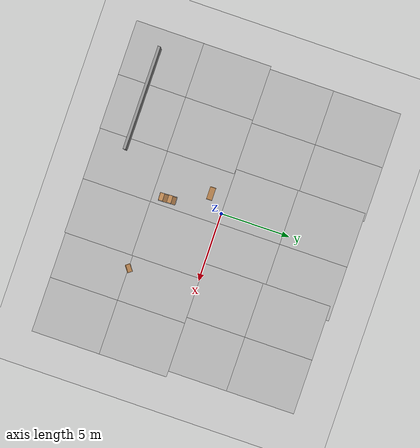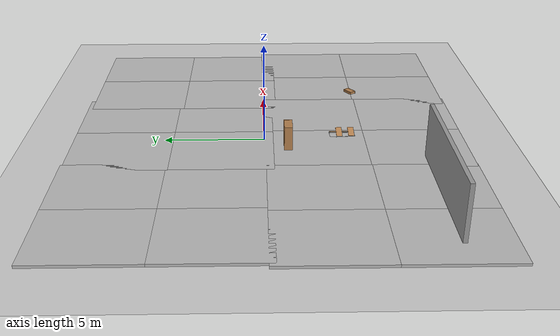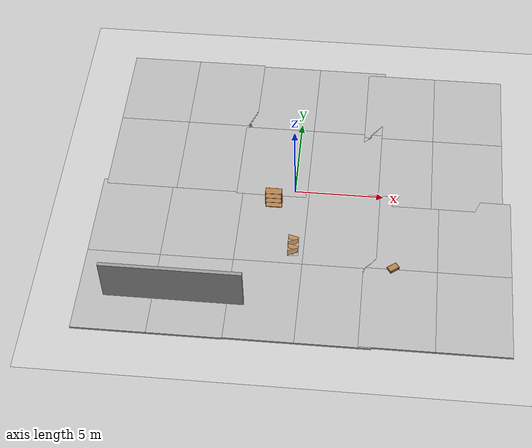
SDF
<sdf version="1.7">
 <world name="default">
  <light name="sun" type="directional">
   <pose>0 0 10 0 -0 0</pose>
   <diffuse>0.8 0.8 0.8 1</diffuse>
   <specular>0.2 0.2 0.2 1</specular>
   <attenuation>
    <range>1000</range>
    <constant>0.9</constant>
    <linear>0.01</linear>
    <quadratic>0.001</quadratic>
   </attenuation>
   <direction>-0.5 0.1 -0.9</direction>
   <spot><inner_angle>0</inner_angle><outer_angle>0</outer_angle><falloff>0</falloff></spot>
  </light>
  <model name="ground_plane">
   <static>1</static>
   <link name="link">
    <collision name="collision">
     <geometry><plane><normal>0 0 1</normal><size>100 100</size></plane></geometry>
     <surface><friction><ode><mu>100</mu><mu2>50</mu2></ode></friction></surface>
    </collision>
    <visual name="visual">
     <cast_shadows>0</cast_shadows>
     <geometry><plane><normal>0 0 1</normal><size>100 100</size></plane></geometry>
     <material>
      <script><uri>file://media/materials/scripts/gazebo.material</uri><name>Gazebo/Grey</name></script>
     </material>
    </visual>
   </link>
  </model>
  <gravity>0 0 -9.8</gravity>
  <magnetic_field>6e-06 2.3e-05 -4.2e-05</magnetic_field>
  <atmosphere type="adiabatic"/>
  <physics type="ode">
   <max_step_size>0.001</max_step_size>
   <real_time_factor>1</real_time_factor>
   <real_time_update_rate>1000</real_time_update_rate>
  </physics>
  <scene><ambient>0.4 0.4 0.4 1</ambient><background>0.7 0.7 0.7 1</background><shadows>1</shadows></scene>
  <spherical_coordinates>
   <surface_model>EARTH_WGS84</surface_model>
   <latitude_deg>0</latitude_deg>
   <longitude_deg>0</longitude_deg>
   <elevation>0</elevation>
   <heading_deg>0</heading_deg>
  </spherical_coordinates>
  <model name="grey_wall">
   <static>1</static>
   <link name="link">
    <pose>0 0 1.4 0 -0 0</pose>
    <collision name="collision"><geometry><box><size>7.5 0.2 2.8</size></box></geometry></collision>
    <visual name="visual">
     <cast_shadows>0</cast_shadows>
     <geometry><box><size>7.5 0.2 2.8</size></box></geometry>
     <material>
      <script>
       <uri>model://grey_wall/materials/scripts</uri>
       <uri>model://grey_wall/materials/textures</uri>
       <name>vrc/grey_wall</name>
      </script>
     </material>
    </visual>
   </link>
   <pose>-5.79546 -7.82873 0 0 -0 0</pose>
  </model>
  <model name="frc2016_chevaldefrise">
   <link name="base">
    <inertial>
     <mass>10</mass>
     <pose>0 0 0.15672 0 -0 0</pose>
     <inertia><ixx>0.380221</ixx><ixy>0</ixy><ixz>0</ixz><iyy>1.43365</iyy><iyz>0</iyz><izz>1.64745</izz></inertia>
    </inertial>
    <visual name="platform">
     <pose>0 0 0.06968 0 -0 0</pose>
     <geometry><box><size>1.27 0.5969 0.003175</size></box></geometry>
    </visual>
    <collision name="platform">
     <pose>0 0 0.06968 0 -0 0</pose>
     <geometry><box><size>1.27 0.5969 0.003175</size></box></geometry>
    </collision>
    <visual name="bar">
     <pose>0 0 0.16855 0 1.5707 0</pose>
     <geometry><cylinder><radius>0.02108</radius><length>1.273</length></cylinder></geometry>
    </visual>
    <collision name="bar">
     <pose>0 0 0.16855 0 1.5707 0</pose>
     <geometry><cylinder><radius>0.02108</radius><length>1.27</length></cylinder></geometry>
    </collision>
    <visual name="castor1">
     <pose>-0.45653 -0.16581 0.03175 0 -0 0</pose>
     <geometry><sphere><radius>0.03175</radius></sphere></geometry>
    </visual>
    <collision name="castor1">
     <pose>-0.45653 -0.16581 0.03175 0 -0 0</pose>
     <geometry><sphere><radius>0.03175</radius></sphere></geometry>
    </collision>
    <visual name="castor2">
     <pose>-0.27855 0.21408 0.03175 0 -0 0</pose>
     <geometry><sphere><radius>0.03175</radius></sphere></geometry>
    </visual>
    <collision name="castor2">
     <pose>-0.27855 0.21408 0.03175 0 -0 0</pose>
     <geometry><sphere><radius>0.03175</radius></sphere></geometry>
    </collision>
    <visual name="castor3">
     <pose>0.28191 0.21419 0.03175 0 -0 0</pose>
     <geometry><sphere><radius>0.03175</radius></sphere></geometry>
    </visual>
    <collision name="castor3">
     <pose>0.28191 0.21419 0.03175 0 -0 0</pose>
     <geometry><sphere><radius>0.03175</radius></sphere></geometry>
    </collision>
    <visual name="castor4">
     <pose>0.45965 -0.16602 0.03175 0 -0 0</pose>
     <geometry><sphere><radius>0.03175</radius></sphere></geometry>
    </visual>
    <collision name="castor4">
     <pose>0.45965 -0.16602 0.03175 0 -0 0</pose>
     <geometry><sphere><radius>0.03175</radius></sphere></geometry>
    </collision>
   </link>
   <link name="slant1">
    <pose>-0.4572 0.01307 0.1997 -0.39732 0 0</pose>
    <inertial>
     <pose>0 0.1 0 0 -0 0</pose>
     <mass>2</mass>
     <inertia>
      <ixx>0.0606857</ixx>
      <ixy>0</ixy>
      <ixz>0</ixz>
      <iyy>0.0148723</iyy>
      <iyz>0</iyz>
      <izz>0.0755042</izz>
     </inertia>
    </inertial>
    <visual name="visual">
     <geometry><box><size>0.29845 0.593285 0.0127</size></box></geometry>
     <material><script><name>Gazebo/WoodFloor</name><uri>__default__</uri></script></material>
    </visual>
    <collision name="collision"><geometry><box><size>0.29845 0.593285 0.0127</size></box></geometry></collision>
   </link>
   <link name="slant2">
    <pose>-0.1524 -0.01307 0.1997 0.39732 -0 0</pose>
    <inertial>
     <mass>2</mass>
     <pose>0 -0.1 0 0 -0 0</pose>
     <inertia>
      <ixx>0.0606857</ixx>
      <ixy>0</ixy>
      <ixz>0</ixz>
      <iyy>0.0148723</iyy>
      <iyz>0</iyz>
      <izz>0.0755042</izz>
     </inertia>
    </inertial>
    <visual name="visual">
     <geometry><box><size>0.29845 0.593285 0.0127</size></box></geometry>
     <material><script><name>Gazebo/WoodFloor</name><uri>__default__</uri></script></material>
    </visual>
    <collision name="collision"><geometry><box><size>0.29845 0.593285 0.0127</size></box></geometry></collision>
   </link>
   <link name="slant3">
    <pose>0.1524 0.01307 0.1997 -0.39732 0 0</pose>
    <inertial>
     <pose>0 0.1 0 0 -0 0</pose>
     <mass>2</mass>
     <inertia>
      <ixx>0.0606857</ixx>
      <ixy>0</ixy>
      <ixz>0</ixz>
      <iyy>0.0148723</iyy>
      <iyz>0</iyz>
      <izz>0.0755042</izz>
     </inertia>
    </inertial>
    <visual name="visual">
     <geometry><box><size>0.29845 0.593285 0.0127</size></box></geometry>
     <material><script><name>Gazebo/WoodFloor</name><uri>__default__</uri></script></material>
    </visual>
    <collision name="collision"><geometry><box><size>0.29845 0.593285 0.0127</size></box></geometry></collision>
   </link>
   <link name="slant4">
    <pose>0.4572 -0.01307 0.1997 0.39732 -0 0</pose>
    <inertial>
     <pose>0 -0.1 0 0 -0 0</pose>
     <mass>2</mass>
     <inertia>
      <ixx>0.0606857</ixx>
      <ixy>0</ixy>
      <ixz>0</ixz>
      <iyy>0.0148723</iyy>
      <iyz>0</iyz>
      <izz>0.0755042</izz>
     </inertia>
    </inertial>
    <visual name="visual">
     <geometry><box><size>0.29845 0.593285 0.0127</size></box></geometry>
     <material><script><name>Gazebo/WoodFloor</name><uri>__default__</uri></script></material>
    </visual>
    <collision name="collision"><geometry><box><size>0.29845 0.593285 0.0127</size></box></geometry></collision>
   </link>
   <joint name="slant1_joint" type="revolute">
    <parent>base</parent>
    <child>slant1</child>
    <axis>
     <xyz>1 0 0</xyz>
     <limit><lower>0</lower><upper>1.5707</upper></limit>
     <dynamics><spring_reference>0</spring_reference><spring_stiffness>0</spring_stiffness></dynamics>
    </axis>
   </joint>
   <joint name="slant2_joint" type="revolute">
    <parent>base</parent>
    <child>slant2</child>
    <axis>
     <xyz>1 0 0</xyz>
     <limit><lower>-1.5707</lower><upper>0</upper></limit>
     <dynamics><spring_reference>0</spring_reference><spring_stiffness>0</spring_stiffness></dynamics>
    </axis>
   </joint>
   <joint name="slant3_joint" type="revolute">
    <parent>base</parent>
    <child>slant3</child>
    <axis>
     <xyz>1 0 0</xyz>
     <limit><lower>0</lower><upper>1.5707</upper></limit>
     <dynamics><spring_reference>0</spring_reference><spring_stiffness>0</spring_stiffness></dynamics>
    </axis>
   </joint>
   <joint name="slant4_joint" type="revolute">
    <parent>base</parent>
    <child>slant4</child>
    <axis>
     <xyz>1 0 0</xyz>
     <limit><lower>-1.5707</lower><upper>0</upper></limit>
     <dynamics><spring_reference>0</spring_reference><spring_stiffness>0</spring_stiffness></dynamics>
    </axis>
   </joint>
   <pose>0.227503 -3.93141 0.1 0 -0 1.61731</pose>
  </model>
  <model name="mud_box">
   <static>1</static>
   <link name="link">
    <collision name="collision"><geometry><box><size>8 10 0.2</size></box></geometry></collision>
    <visual name="visual_1">
     <pose>-2 2.5 0 0 -0 0</pose>
     <cast_shadows>0</cast_shadows>
     <geometry><box><size>4 5 0.2</size></box></geometry>
     <material>
      <script>
       <uri>model://mud_box/materials/scripts</uri>
       <uri>model://mud_box/materials/textures</uri>
       <name>vrc/mud</name>
      </script>
     </material>
    </visual>
    <visual name="visual_2">
     <pose>2 2.5 0 0 -0 0</pose>
     <cast_shadows>0</cast_shadows>
     <geometry><box><size>4 5 0.2</size></box></geometry>
     <material>
      <script>
       <uri>model://mud_box/materials/scripts</uri>
       <uri>model://mud_box/materials/textures</uri>
       <name>vrc/mud</name>
      </script>
     </material>
    </visual>
    <visual name="visual_3">
     <pose>2 -2.5 0 0 -0 0</pose>
     <cast_shadows>0</cast_shadows>
     <geometry><box><size>4 5 0.2</size></box></geometry>
     <material>
      <script>
       <uri>model://mud_box/materials/scripts</uri>
       <uri>model://mud_box/materials/textures</uri>
       <name>vrc/mud</name>
      </script>
     </material>
    </visual>
    <visual name="visual_4">
     <pose>-2 -2.5 0 0 -0 0</pose>
     <cast_shadows>0</cast_shadows>
     <geometry><box><size>4 5 0.2</size></box></geometry>
     <material>
      <script>
       <uri>model://mud_box/materials/scripts</uri>
       <uri>model://mud_box/materials/textures</uri>
       <name>vrc/mud</name>
      </script>
     </material>
    </visual>
   </link>
   <pose>-6.9359 -5.06203 0 0 -0 0</pose>
  </model>
  <model name="mud_box_0">
   <static>1</static>
   <link name="link">
    <collision name="collision"><geometry><box><size>8 10 0.2</size></box></geometry></collision>
    <visual name="visual_1">
     <pose>-2 2.5 0 0 -0 0</pose>
     <cast_shadows>0</cast_shadows>
     <geometry><box><size>4 5 0.2</size></box></geometry>
     <material>
      <script>
       <uri>model://mud_box/materials/scripts</uri>
       <uri>model://mud_box/materials/textures</uri>
       <name>vrc/mud</name>
      </script>
     </material>
    </visual>
    <visual name="visual_2">
     <pose>2 2.5 0 0 -0 0</pose>
     <cast_shadows>0</cast_shadows>
     <geometry><box><size>4 5 0.2</size></box></geometry>
     <material>
      <script>
       <uri>model://mud_box/materials/scripts</uri>
       <uri>model://mud_box/materials/textures</uri>
       <name>vrc/mud</name>
      </script>
     </material>
    </visual>
    <visual name="visual_3">
     <pose>2 -2.5 0 0 -0 0</pose>
     <cast_shadows>0</cast_shadows>
     <geometry><box><size>4 5 0.2</size></box></geometry>
     <material>
      <script>
       <uri>model://mud_box/materials/scripts</uri>
       <uri>model://mud_box/materials/textures</uri>
       <name>vrc/mud</name>
      </script>
     </material>
    </visual>
    <visual name="visual_4">
     <pose>-2 -2.5 0 0 -0 0</pose>
     <cast_shadows>0</cast_shadows>
     <geometry><box><size>4 5 0.2</size></box></geometry>
     <material>
      <script>
       <uri>model://mud_box/materials/scripts</uri>
       <uri>model://mud_box/materials/textures</uri>
       <name>vrc/mud</name>
      </script>
     </material>
    </visual>
   </link>
   <pose>0.807666 -5.03443 0 0 -0 0</pose>
  </model>
  <model name="mud_box_1">
   <static>1</static>
   <link name="link">
    <collision name="collision"><geometry><box><size>8 10 0.2</size></box></geometry></collision>
    <visual name="visual_1">
     <pose>-2 2.5 0 0 -0 0</pose>
     <cast_shadows>0</cast_shadows>
     <geometry><box><size>4 5 0.2</size></box></geometry>
     <material>
      <script>
       <uri>model://mud_box/materials/scripts</uri>
       <uri>model://mud_box/materials/textures</uri>
       <name>vrc/mud</name>
      </script>
     </material>
    </visual>
    <visual name="visual_2">
     <pose>2 2.5 0 0 -0 0</pose>
     <cast_shadows>0</cast_shadows>
     <geometry><box><size>4 5 0.2</size></box></geometry>
     <material>
      <script>
       <uri>model://mud_box/materials/scripts</uri>
       <uri>model://mud_box/materials/textures</uri>
       <name>vrc/mud</name>
      </script>
     </material>
    </visual>
    <visual name="visual_3">
     <pose>2 -2.5 0 0 -0 0</pose>
     <cast_shadows>0</cast_shadows>
     <geometry><box><size>4 5 0.2</size></box></geometry>
     <material>
      <script>
       <uri>model://mud_box/materials/scripts</uri>
       <uri>model://mud_box/materials/textures</uri>
       <name>vrc/mud</name>
      </script>
     </material>
    </visual>
    <visual name="visual_4">
     <pose>-2 -2.5 0 0 -0 0</pose>
     <cast_shadows>0</cast_shadows>
     <geometry><box><size>4 5 0.2</size></box></geometry>
     <material>
      <script>
       <uri>model://mud_box/materials/scripts</uri>
       <uri>model://mud_box/materials/textures</uri>
       <name>vrc/mud</name>
      </script>
     </material>
    </visual>
   </link>
   <pose>8.12407 -4.96523 0 0 -0 0</pose>
  </model>
  <model name="mud_box_2">
   <static>1</static>
   <link name="link">
    <collision name="collision"><geometry><box><size>8 10 0.2</size></box></geometry></collision>
    <visual name="visual_1">
     <pose>-2 2.5 0 0 -0 0</pose>
     <cast_shadows>0</cast_shadows>
     <geometry><box><size>4 5 0.2</size></box></geometry>
     <material>
      <script>
       <uri>model://mud_box/materials/scripts</uri>
       <uri>model://mud_box/materials/textures</uri>
       <name>vrc/mud</name>
      </script>
     </material>
    </visual>
    <visual name="visual_2">
     <pose>2 2.5 0 0 -0 0</pose>
     <cast_shadows>0</cast_shadows>
     <geometry><box><size>4 5 0.2</size></box></geometry>
     <material>
      <script>
       <uri>model://mud_box/materials/scripts</uri>
       <uri>model://mud_box/materials/textures</uri>
       <name>vrc/mud</name>
      </script>
     </material>
    </visual>
    <visual name="visual_3">
     <pose>2 -2.5 0 0 -0 0</pose>
     <cast_shadows>0</cast_shadows>
     <geometry><box><size>4 5 0.2</size></box></geometry>
     <material>
      <script>
       <uri>model://mud_box/materials/scripts</uri>
       <uri>model://mud_box/materials/textures</uri>
       <name>vrc/mud</name>
      </script>
     </material>
    </visual>
    <visual name="visual_4">
     <pose>-2 -2.5 0 0 -0 0</pose>
     <cast_shadows>0</cast_shadows>
     <geometry><box><size>4 5 0.2</size></box></geometry>
     <material>
      <script>
       <uri>model://mud_box/materials/scripts</uri>
       <uri>model://mud_box/materials/textures</uri>
       <name>vrc/mud</name>
      </script>
     </material>
    </visual>
   </link>
   <pose>7.68555 4.34719 0 0 -0 0</pose>
  </model>
  <model name="mud_box_3">
   <static>1</static>
   <link name="link">
    <collision name="collision"><geometry><box><size>8 10 0.2</size></box></geometry></collision>
    <visual name="visual_1">
     <pose>-2 2.5 0 0 -0 0</pose>
     <cast_shadows>0</cast_shadows>
     <geometry><box><size>4 5 0.2</size></box></geometry>
     <material>
      <script>
       <uri>model://mud_box/materials/scripts</uri>
       <uri>model://mud_box/materials/textures</uri>
       <name>vrc/mud</name>
      </script>
     </material>
    </visual>
    <visual name="visual_2">
     <pose>2 2.5 0 0 -0 0</pose>
     <cast_shadows>0</cast_shadows>
     <geometry><box><size>4 5 0.2</size></box></geometry>
     <material>
      <script>
       <uri>model://mud_box/materials/scripts</uri>
       <uri>model://mud_box/materials/textures</uri>
       <name>vrc/mud</name>
      </script>
     </material>
    </visual>
    <visual name="visual_3">
     <pose>2 -2.5 0 0 -0 0</pose>
     <cast_shadows>0</cast_shadows>
     <geometry><box><size>4 5 0.2</size></box></geometry>
     <material>
      <script>
       <uri>model://mud_box/materials/scripts</uri>
       <uri>model://mud_box/materials/textures</uri>
       <name>vrc/mud</name>
      </script>
     </material>
    </visual>
    <visual name="visual_4">
     <pose>-2 -2.5 0 0 -0 0</pose>
     <cast_shadows>0</cast_shadows>
     <geometry><box><size>4 5 0.2</size></box></geometry>
     <material>
      <script>
       <uri>model://mud_box/materials/scripts</uri>
       <uri>model://mud_box/materials/textures</uri>
       <name>vrc/mud</name>
      </script>
     </material>
    </visual>
   </link>
   <pose>0.705179 4.55816 0 0 -0 0</pose>
  </model>
  <model name="mud_box_4">
   <static>1</static>
   <link name="link">
    <collision name="collision"><geometry><box><size>8 10 0.2</size></box></geometry></collision>
    <visual name="visual_1">
     <pose>-2 2.5 0 0 -0 0</pose>
     <cast_shadows>0</cast_shadows>
     <geometry><box><size>4 5 0.2</size></box></geometry>
     <material>
      <script>
       <uri>model://mud_box/materials/scripts</uri>
       <uri>model://mud_box/materials/textures</uri>
       <name>vrc/mud</name>
      </script>
     </material>
    </visual>
    <visual name="visual_2">
     <pose>2 2.5 0 0 -0 0</pose>
     <cast_shadows>0</cast_shadows>
     <geometry><box><size>4 5 0.2</size></box></geometry>
     <material>
      <script>
       <uri>model://mud_box/materials/scripts</uri>
       <uri>model://mud_box/materials/textures</uri>
       <name>vrc/mud</name>
      </script>
     </material>
    </visual>
    <visual name="visual_3">
     <pose>2 -2.5 0 0 -0 0</pose>
     <cast_shadows>0</cast_shadows>
     <geometry><box><size>4 5 0.2</size></box></geometry>
     <material>
      <script>
       <uri>model://mud_box/materials/scripts</uri>
       <uri>model://mud_box/materials/textures</uri>
       <name>vrc/mud</name>
      </script>
     </material>
    </visual>
    <visual name="visual_4">
     <pose>-2 -2.5 0 0 -0 0</pose>
     <cast_shadows>0</cast_shadows>
     <geometry><box><size>4 5 0.2</size></box></geometry>
     <material>
      <script>
       <uri>model://mud_box/materials/scripts</uri>
       <uri>model://mud_box/materials/textures</uri>
       <name>vrc/mud</name>
      </script>
     </material>
    </visual>
   </link>
   <pose>-6.72483 4.65339 0 0 -0 0</pose>
  </model>
  <model name="wooden_case">
   <link name="base">
    <pose>0 0 0.024 0 -0 0</pose>
    <inertial>
     <pose>-0.022184 0 0.171592 0 -0 0</pose>
     <mass>3.96264</mass>
     <inertia>
      <ixx>0.213536</ixx>
      <ixy>0</ixy>
      <ixz>0.000779377</ixz>
      <iyy>0.0708943</iyy>
      <iyz>0</iyz>
      <izz>0.154604</izz>
     </inertia>
    </inertial>
    <collision name="collision_back">
     <pose>-0.053975 0 0.1778 0 -0 0</pose>
     <geometry><box><size>0.01905 0.5461 0.3175</size></box></geometry>
     <surface>
      <contact>
       <poissons_ratio>0.347</poissons_ratio>
       <elastic_modulus>8.8e+09</elastic_modulus>
       <ode><kp>100000</kp><kd>100</kd><max_vel>100</max_vel><min_depth>0.001</min_depth></ode>
      </contact>
      <friction>
       <torsional>
        <coefficient>1</coefficient>
        <use_patch_radius>0</use_patch_radius>
        <surface_radius>0.01</surface_radius>
       </torsional>
      </friction>
     </surface>
    </collision>
    <visual name="visual_back">
     <pose>-0.053975 0 0.1778 0 -0 0</pose>
     <geometry><box><size>0.01905 0.5461 0.3175</size></box></geometry>
     <material>
      <script><uri>file://media/materials/scripts/gazebo.material</uri><name>Gazebo/Wood</name></script>
     </material>
    </visual>
    <collision name="collision_bottom">
     <pose>0 0 0.009525 0 -0 0</pose>
     <geometry><box><size>0.127 0.5842 0.01905</size></box></geometry>
     <surface>
      <contact>
       <poissons_ratio>0.347</poissons_ratio>
       <elastic_modulus>8.8e+09</elastic_modulus>
       <ode><kp>100000</kp><kd>100</kd><max_vel>100</max_vel><min_depth>0.001</min_depth></ode>
      </contact>
      <friction>
       <torsional>
        <coefficient>1</coefficient>
        <use_patch_radius>0</use_patch_radius>
        <surface_radius>0.01</surface_radius>
       </torsional>
      </friction>
     </surface>
    </collision>
    <visual name="visual_bottom">
     <pose>0 0 0.009525 0 -0 0</pose>
     <geometry><box><size>0.127 0.5842 0.01905</size></box></geometry>
     <material>
      <script><uri>file://media/materials/scripts/gazebo.material</uri><name>Gazebo/Wood</name></script>
     </material>
    </visual>
    <collision name="collision_top">
     <pose>0 0 0.346075 0 -0 0</pose>
     <geometry><box><size>0.127 0.5842 0.01905</size></box></geometry>
     <surface>
      <contact>
       <poissons_ratio>0.347</poissons_ratio>
       <elastic_modulus>8.8e+09</elastic_modulus>
       <ode><kp>100000</kp><kd>100</kd><max_vel>100</max_vel><min_depth>0.001</min_depth></ode>
      </contact>
      <friction>
       <torsional>
        <coefficient>1</coefficient>
        <use_patch_radius>0</use_patch_radius>
        <surface_radius>0.01</surface_radius>
       </torsional>
      </friction>
     </surface>
    </collision>
    <visual name="visual_top">
     <pose>0 0 0.346075 0 -0 0</pose>
     <geometry><box><size>0.127 0.5842 0.01905</size></box></geometry>
     <material>
      <script><uri>file://media/materials/scripts/gazebo.material</uri><name>Gazebo/Wood</name></script>
     </material>
    </visual>
    <collision name="collision_left">
     <pose>0 -0.282575 0.1778 0 -0 0</pose>
     <geometry><box><size>0.127 0.01905 0.3175</size></box></geometry>
     <surface>
      <contact>
       <poissons_ratio>0.347</poissons_ratio>
       <elastic_modulus>8.8e+09</elastic_modulus>
       <ode><kp>100000</kp><kd>100</kd><max_vel>100</max_vel><min_depth>0.001</min_depth></ode>
      </contact>
      <friction>
       <torsional>
        <coefficient>1</coefficient>
        <use_patch_radius>0</use_patch_radius>
        <surface_radius>0.01</surface_radius>
       </torsional>
      </friction>
     </surface>
    </collision>
    <visual name="visual_left">
     <pose>0 -0.282575 0.1778 0 -0 0</pose>
     <geometry><box><size>0.127 0.01905 0.3175</size></box></geometry>
     <material>
      <script><uri>file://media/materials/scripts/gazebo.material</uri><name>Gazebo/Wood</name></script>
     </material>
    </visual>
    <collision name="collision_right">
     <pose>0 0.282575 0.1778 0 -0 0</pose>
     <geometry><box><size>0.127 0.01905 0.3175</size></box></geometry>
     <surface>
      <contact>
       <poissons_ratio>0.347</poissons_ratio>
       <elastic_modulus>8.8e+09</elastic_modulus>
       <ode><kp>100000</kp><kd>100</kd><max_vel>100</max_vel><min_depth>0.001</min_depth></ode>
      </contact>
      <friction>
       <torsional>
        <coefficient>1</coefficient>
        <use_patch_radius>0</use_patch_radius>
        <surface_radius>0.01</surface_radius>
       </torsional>
      </friction>
     </surface>
    </collision>
    <visual name="visual_right">
     <pose>0 0.282575 0.1778 0 -0 0</pose>
     <geometry><box><size>0.127 0.01905 0.3175</size></box></geometry>
     <material>
      <script><uri>file://media/materials/scripts/gazebo.material</uri><name>Gazebo/Wood</name></script>
     </material>
    </visual>
    <collision name="collision_block_left">
     <pose>0.0095 -0.2151 -0.012 0 -0 0</pose>
     <geometry><box><size>0.108 0.05 0.024</size></box></geometry>
     <surface>
      <contact>
       <poissons_ratio>0.347</poissons_ratio>
       <elastic_modulus>8.8e+09</elastic_modulus>
       <ode><kp>100000</kp><kd>100</kd><max_vel>100</max_vel><min_depth>0.001</min_depth></ode>
      </contact>
      <friction>
       <torsional>
        <coefficient>1</coefficient>
        <use_patch_radius>0</use_patch_radius>
        <surface_radius>0.01</surface_radius>
       </torsional>
      </friction>
     </surface>
    </collision>
    <visual name="visual_block_left">
     <pose>0.0095 -0.2151 -0.012 0 -0 0</pose>
     <geometry><box><size>0.108 0.05 0.024</size></box></geometry>
     <material>
      <script><uri>file://media/materials/scripts/gazebo.material</uri><name>Gazebo/Wood</name></script>
     </material>
    </visual>
    <collision name="collision_block_right">
     <pose>0.0095 0.2151 -0.012 0 -0 0</pose>
     <geometry><box><size>0.108 0.05 0.024</size></box></geometry>
     <surface>
      <contact>
       <poissons_ratio>0.347</poissons_ratio>
       <elastic_modulus>8.8e+09</elastic_modulus>
       <ode><kp>100000</kp><kd>100</kd><max_vel>100</max_vel><min_depth>0.001</min_depth></ode>
      </contact>
      <friction>
       <torsional>
        <coefficient>1</coefficient>
        <use_patch_radius>0</use_patch_radius>
        <surface_radius>0.01</surface_radius>
       </torsional>
      </friction>
     </surface>
    </collision>
    <visual name="visual_block_right">
     <pose>0.0095 0.2151 -0.012 0 -0 0</pose>
     <geometry><box><size>0.108 0.05 0.024</size></box></geometry>
     <material>
      <script><uri>file://media/materials/scripts/gazebo.material</uri><name>Gazebo/Wood</name></script>
     </material>
    </visual>
   </link>
   <link name="lid">
    <pose>0.243775 0 0.009525 0 -0 0</pose>
    <inertial>
     <mass>1.97874</mass>
     <inertia>
      <ixx>0.0563367</ixx>
      <ixy>0</ixy>
      <ixz>0</ixz>
      <iyy>0.020911</iyy>
      <iyz>0</iyz>
      <izz>0.0771281</izz>
     </inertia>
    </inertial>
    <collision name="collision">
     <geometry><box><size>0.3556 0.5842 0.01905</size></box></geometry>
     <surface>
      <contact>
       <poissons_ratio>0.347</poissons_ratio>
       <elastic_modulus>8.8e+09</elastic_modulus>
       <ode><kp>100000</kp><kd>100</kd><max_vel>100</max_vel><min_depth>0.001</min_depth></ode>
      </contact>
      <friction>
       <torsional>
        <coefficient>1</coefficient>
        <use_patch_radius>0</use_patch_radius>
        <surface_radius>0.01</surface_radius>
       </torsional>
      </friction>
     </surface>
    </collision>
    <visual name="visual">
     <geometry><box><size>0.3556 0.5842 0.01905</size></box></geometry>
     <material>
      <script><uri>file://media/materials/scripts/gazebo.material</uri><name>Gazebo/Wood</name></script>
     </material>
    </visual>
    <visual name="tee_nut_1">
     <pose>0.122 -0.216 0 0 -0 0</pose>
     <geometry><cylinder><radius>0.00635</radius><length>0.0192405</length></cylinder></geometry>
     <material>
      <script><uri>file://media/materials/scripts/gazebo.material</uri><name>Gazebo/Grey</name></script>
     </material>
    </visual>
    <visual name="tee_nut_2">
     <pose>0.122 -0.088 0 0 -0 0</pose>
     <geometry><cylinder><radius>0.00635</radius><length>0.0192405</length></cylinder></geometry>
     <material>
      <script><uri>file://media/materials/scripts/gazebo.material</uri><name>Gazebo/Grey</name></script>
     </material>
    </visual>
    <visual name="tee_nut_3">
     <pose>0.122 0.088 0 0 -0 0</pose>
     <geometry><cylinder><radius>0.00635</radius><length>0.0192405</length></cylinder></geometry>
     <material>
      <script><uri>file://media/materials/scripts/gazebo.material</uri><name>Gazebo/Grey</name></script>
     </material>
    </visual>
    <visual name="tee_nut_4">
     <pose>0.122 0.216 0 0 -0 0</pose>
     <geometry><cylinder><radius>0.00635</radius><length>0.0192405</length></cylinder></geometry>
     <material>
      <script><uri>file://media/materials/scripts/gazebo.material</uri><name>Gazebo/Grey</name></script>
     </material>
    </visual>
   </link>
   <joint name="lid_hinge" type="revolute">
    <pose>-0.1778 0 0.01905 0 -0 0</pose>
    <parent>base</parent>
    <child>lid</child>
    <axis>
     <xyz>0 1 0</xyz>
     <limit><upper>0.523599</upper><lower>-1.5708</lower></limit>
     <dynamics><spring_reference>0</spring_reference><spring_stiffness>0</spring_stiffness></dynamics>
    </axis>
   </joint>
   <pose>5.85251 -5.08858 0.193399 -0 1.57077 2.20414</pose>
  </model>
  <model name="bookshelf">
   <static>1</static>
   <link name="link">
    <inertial><mass>1</mass></inertial>
    <collision name="back">
     <pose>0 0.005 0.6 0 -0 0</pose>
     <geometry><box><size>0.9 0.01 1.2</size></box></geometry>
    </collision>
    <visual name="visual1">
     <pose>0 0.005 0.6 0 -0 0</pose>
     <geometry><box><size>0.9 0.01 1.2</size></box></geometry>
     <material>
      <script><uri>file://media/materials/scripts/gazebo.material</uri><name>Gazebo/Wood</name></script>
     </material>
    </visual>
    <collision name="left_side">
     <pose>0.45 -0.195 0.6 0 -0 0</pose>
     <geometry><box><size>0.02 0.4 1.2</size></box></geometry>
    </collision>
    <visual name="visual2">
     <pose>0.45 -0.195 0.6 0 -0 0</pose>
     <geometry><box><size>0.02 0.4 1.2</size></box></geometry>
     <material>
      <script><uri>file://media/materials/scripts/gazebo.material</uri><name>Gazebo/Wood</name></script>
     </material>
    </visual>
    <collision name="right_side">
     <pose>-0.45 -0.195 0.6 0 -0 0</pose>
     <geometry><box><size>0.02 0.4 1.2</size></box></geometry>
    </collision>
    <visual name="visual3">
     <pose>-0.45 -0.195 0.6 0 -0 0</pose>
     <geometry><box><size>0.02 0.4 1.2</size></box></geometry>
     <material>
      <script><uri>file://media/materials/scripts/gazebo.material</uri><name>Gazebo/Wood</name></script>
     </material>
    </visual>
    <collision name="bottom">
     <pose>0 -0.195 0.03 0 -0 0</pose>
     <geometry><box><size>0.88 0.4 0.06</size></box></geometry>
    </collision>
    <visual name="visual4">
     <pose>0 -0.195 0.03 0 -0 0</pose>
     <geometry><box><size>0.88 0.4 0.06</size></box></geometry>
     <material>
      <script><uri>file://media/materials/scripts/gazebo.material</uri><name>Gazebo/Wood</name></script>
     </material>
    </visual>
    <collision name="top">
     <pose>0 -0.195 1.19 0 -0 0</pose>
     <geometry><box><size>0.88 0.4 0.02</size></box></geometry>
    </collision>
    <visual name="visual5">
     <pose>0 -0.195 1.19 0 -0 0</pose>
     <geometry><box><size>0.88 0.4 0.02</size></box></geometry>
     <material>
      <script><uri>file://media/materials/scripts/gazebo.material</uri><name>Gazebo/Wood</name></script>
     </material>
    </visual>
    <collision name="low_shelf">
     <pose>0 -0.195 0.43 0 -0 0</pose>
     <geometry><box><size>0.88 0.4 0.02</size></box></geometry>
    </collision>
    <visual name="visual6">
     <pose>0 -0.195 0.43 0 -0 0</pose>
     <geometry><box><size>0.88 0.4 0.02</size></box></geometry>
     <material>
      <script><uri>file://media/materials/scripts/gazebo.material</uri><name>Gazebo/Wood</name></script>
     </material>
    </visual>
    <collision name="high_shelf">
     <pose>0 -0.195 0.8 0 -0 0</pose>
     <geometry><box><size>0.88 0.4 0.02</size></box></geometry>
    </collision>
    <visual name="visual7">
     <pose>0 -0.195 0.8 0 -0 0</pose>
     <geometry><box><size>0.88 0.4 0.02</size></box></geometry>
     <material>
      <script><uri>file://media/materials/scripts/gazebo.material</uri><name>Gazebo/Wood</name></script>
     </material>
    </visual>
   </link>
   <pose>-1.09672 -0.95875 0.189671 0 -0 0</pose>
  </model>
 </world>
</sdf>
